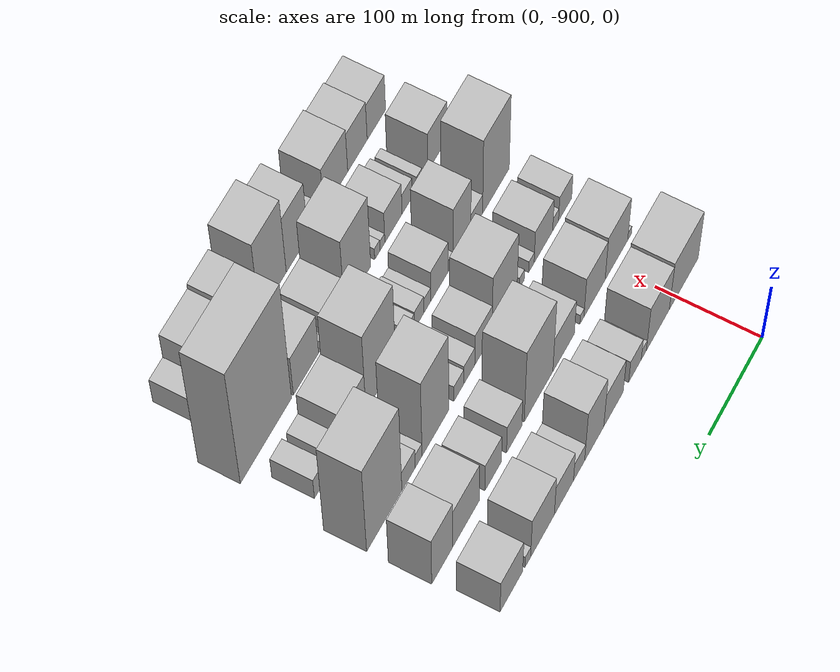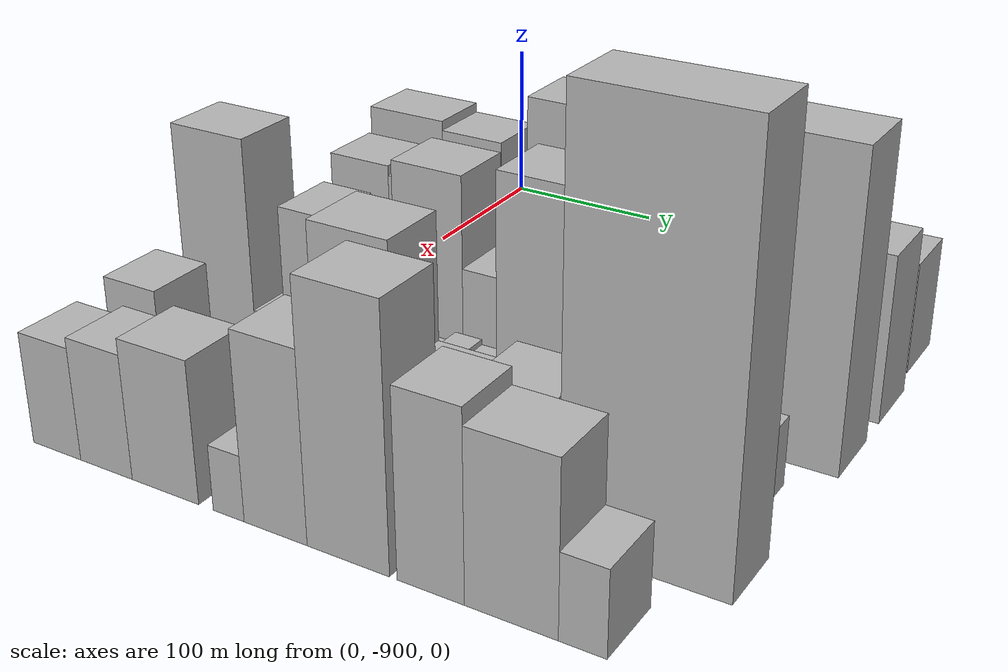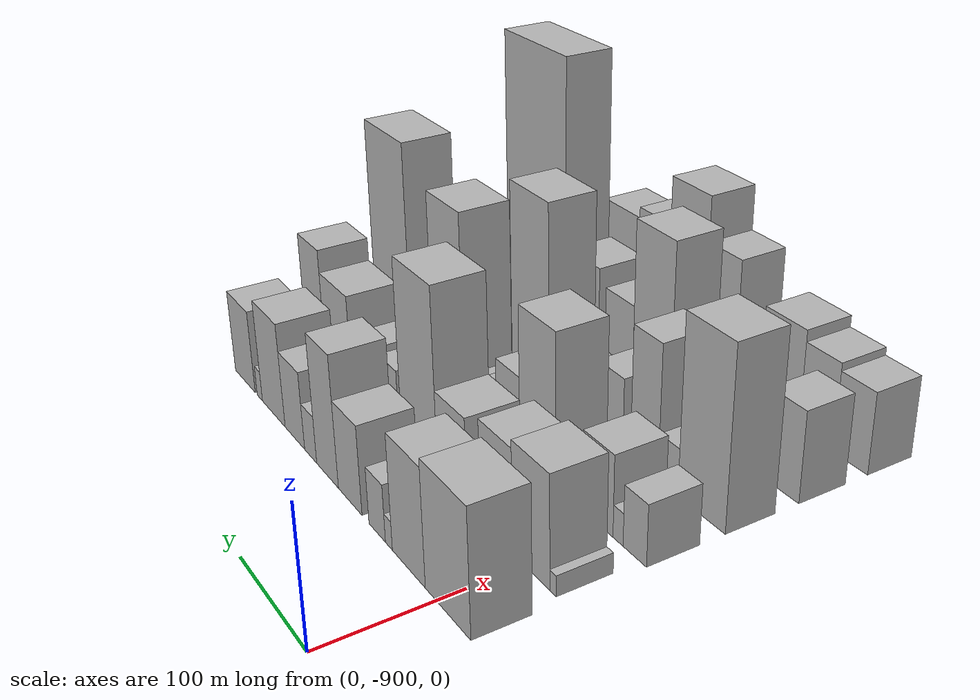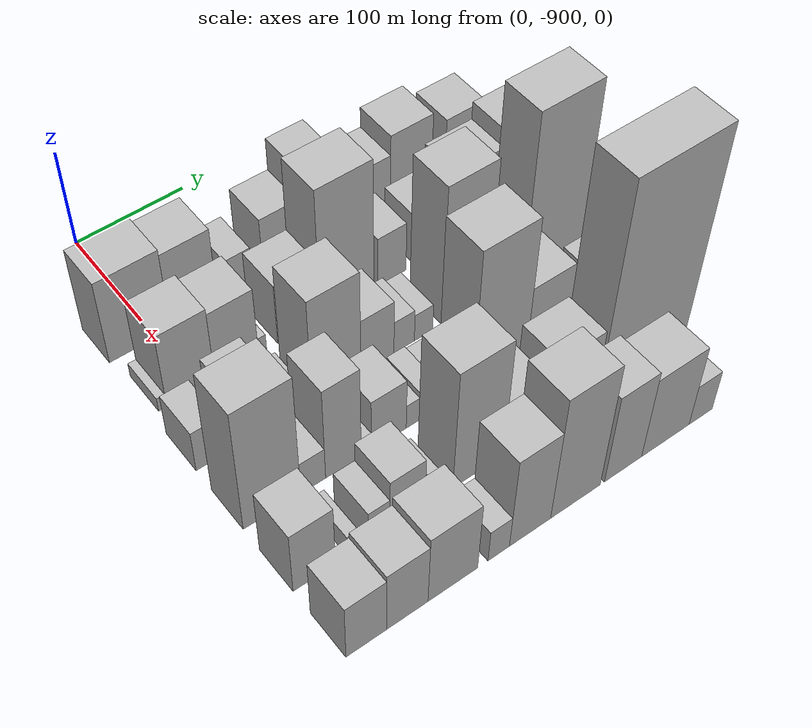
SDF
<sdf version="1.6">
 <world name="default">
  <model name="building_1">
   <static>1</static>
   <pose>100.0000 -913.0944 0 0.000000 0.000000 0.000000</pose>
   <link name="link">
    <pose>0 0 45.00 0 0 0</pose>
    <collision name="collision"><geometry><box><size>40.0000 53.8113 90.0000</size></box></geometry></collision>
    <visual name="visual">
     <cast_shadows>0</cast_shadows>
     <geometry><box><size>40.0000 53.8113 90.0000</size></box></geometry>
     <material>
      <script>
       <uri>model://HANNAS_wall/materials/scripts</uri>
       <uri>model://HANNAS_wall/materials/textures</uri>
       <name>vrc/HANNAS_wall</name>
      </script>
     </material>
    </visual>
   </link>
  </model>
  <model name="building_2">
   <static>1</static>
   <pose>100.0000 -864.8696 0 0.000000 0.000000 0.000000</pose>
   <link name="link">
    <pose>0 0 42.00 0 0 0</pose>
    <collision name="collision"><geometry><box><size>40.0000 42.6382 84.0000</size></box></geometry></collision>
    <visual name="visual">
     <cast_shadows>0</cast_shadows>
     <geometry><box><size>40.0000 42.6382 84.0000</size></box></geometry>
     <material>
      <script>
       <uri>model://HANNAS_wall/materials/scripts</uri>
       <uri>model://HANNAS_wall/materials/textures</uri>
       <name>vrc/HANNAS_wall</name>
      </script>
     </material>
    </visual>
   </link>
  </model>
  <model name="building_3">
   <static>1</static>
   <pose>100.0000 -838.8419 0 0.000000 0.000000 0.000000</pose>
   <link name="link">
    <pose>0 0 10.50 0 0 0</pose>
    <collision name="collision"><geometry><box><size>40.0000 9.4172 21.0000</size></box></geometry></collision>
    <visual name="visual">
     <cast_shadows>0</cast_shadows>
     <geometry><box><size>40.0000 9.4172 21.0000</size></box></geometry>
     <material>
      <script>
       <uri>model://HANNAS_wall/materials/scripts</uri>
       <uri>model://HANNAS_wall/materials/textures</uri>
       <name>vrc/HANNAS_wall</name>
      </script>
     </material>
    </visual>
   </link>
  </model>
  <model name="building_4">
   <static>1</static>
   <pose>100.0000 -822.6182 0 0.000000 0.000000 0.000000</pose>
   <link name="link">
    <pose>0 0 21.00 0 0 0</pose>
    <collision name="collision"><geometry><box><size>40.0000 23.0302 42.0000</size></box></geometry></collision>
    <visual name="visual">
     <cast_shadows>0</cast_shadows>
     <geometry><box><size>40.0000 23.0302 42.0000</size></box></geometry>
     <material>
      <script>
       <uri>model://HANNAS_wall/materials/scripts</uri>
       <uri>model://HANNAS_wall/materials/textures</uri>
       <name>vrc/HANNAS_wall</name>
      </script>
     </material>
    </visual>
   </link>
  </model>
  <model name="building_5">
   <static>1</static>
   <pose>100.0000 -783.4196 0 0.000000 0.000000 0.000000</pose>
   <link name="link">
    <pose>0 0 33.00 0 0 0</pose>
    <collision name="collision"><geometry><box><size>40.0000 35.3670 66.0000</size></box></geometry></collision>
    <visual name="visual">
     <cast_shadows>0</cast_shadows>
     <geometry><box><size>40.0000 35.3670 66.0000</size></box></geometry>
     <material>
      <script>
       <uri>model://HANNAS_wall/materials/scripts</uri>
       <uri>model://HANNAS_wall/materials/textures</uri>
       <name>vrc/HANNAS_wall</name>
      </script>
     </material>
    </visual>
   </link>
  </model>
  <model name="building_6">
   <static>1</static>
   <pose>100.0000 -748.5114 0 0.000000 0.000000 0.000000</pose>
   <link name="link">
    <pose>0 0 49.50 0 0 0</pose>
    <collision name="collision"><geometry><box><size>40.0000 34.4495 99.0000</size></box></geometry></collision>
    <visual name="visual">
     <cast_shadows>0</cast_shadows>
     <geometry><box><size>40.0000 34.4495 99.0000</size></box></geometry>
     <material>
      <script>
       <uri>model://HANNAS_wall/materials/scripts</uri>
       <uri>model://HANNAS_wall/materials/textures</uri>
       <name>vrc/HANNAS_wall</name>
      </script>
     </material>
    </visual>
   </link>
  </model>
  <model name="building_7">
   <static>1</static>
   <pose>100.0000 -721.2804 0 0.000000 0.000000 0.000000</pose>
   <link name="link">
    <pose>0 0 18.00 0 0 0</pose>
    <collision name="collision"><geometry><box><size>40.0000 20.0126 36.0000</size></box></geometry></collision>
    <visual name="visual">
     <cast_shadows>0</cast_shadows>
     <geometry><box><size>40.0000 20.0126 36.0000</size></box></geometry>
     <material>
      <script>
       <uri>model://HANNAS_wall/materials/scripts</uri>
       <uri>model://HANNAS_wall/materials/textures</uri>
       <name>vrc/HANNAS_wall</name>
      </script>
     </material>
    </visual>
   </link>
  </model>
  <model name="building_8">
   <static>1</static>
   <pose>100.0000 -694.3044 0 0.000000 0.000000 0.000000</pose>
   <link name="link">
    <pose>0 0 30.00 0 0 0</pose>
    <collision name="collision"><geometry><box><size>40.0000 33.9393 60.0000</size></box></geometry></collision>
    <visual name="visual">
     <cast_shadows>0</cast_shadows>
     <geometry><box><size>40.0000 33.9393 60.0000</size></box></geometry>
     <material>
      <script>
       <uri>model://HANNAS_wall/materials/scripts</uri>
       <uri>model://HANNAS_wall/materials/textures</uri>
       <name>vrc/HANNAS_wall</name>
      </script>
     </material>
    </visual>
   </link>
  </model>
  <model name="building_9">
   <static>1</static>
   <pose>100.0000 -656.4122 0 0.000000 0.000000 0.000000</pose>
   <link name="link">
    <pose>0 0 40.50 0 0 0</pose>
    <collision name="collision"><geometry><box><size>40.0000 41.8451 81.0000</size></box></geometry></collision>
    <visual name="visual">
     <cast_shadows>0</cast_shadows>
     <geometry><box><size>40.0000 41.8451 81.0000</size></box></geometry>
     <material>
      <script>
       <uri>model://HANNAS_wall/materials/scripts</uri>
       <uri>model://HANNAS_wall/materials/textures</uri>
       <name>vrc/HANNAS_wall</name>
      </script>
     </material>
    </visual>
   </link>
  </model>
  <model name="building_10">
   <static>1</static>
   <pose>100.0000 -630.5319 0 0.000000 0.000000 0.000000</pose>
   <link name="link">
    <pose>0 0 12.00 0 0 0</pose>
    <collision name="collision"><geometry><box><size>40.0000 9.9155 24.0000</size></box></geometry></collision>
    <visual name="visual">
     <cast_shadows>0</cast_shadows>
     <geometry><box><size>40.0000 9.9155 24.0000</size></box></geometry>
     <material>
      <script>
       <uri>model://HANNAS_wall/materials/scripts</uri>
       <uri>model://HANNAS_wall/materials/textures</uri>
       <name>vrc/HANNAS_wall</name>
      </script>
     </material>
    </visual>
   </link>
  </model>
  <model name="building_11">
   <static>1</static>
   <pose>100.0000 -601.9083 0 0.000000 0.000000 0.000000</pose>
   <link name="link">
    <pose>0 0 33.00 0 0 0</pose>
    <collision name="collision"><geometry><box><size>40.0000 39.3316 66.0000</size></box></geometry></collision>
    <visual name="visual">
     <cast_shadows>0</cast_shadows>
     <geometry><box><size>40.0000 39.3316 66.0000</size></box></geometry>
     <material>
      <script>
       <uri>model://HANNAS_wall/materials/scripts</uri>
       <uri>model://HANNAS_wall/materials/textures</uri>
       <name>vrc/HANNAS_wall</name>
      </script>
     </material>
    </visual>
   </link>
  </model>
  <model name="building_61">
   <static>1</static>
   <pose>160.0000 -930.5356 0 0.000000 0.000000 0.000000</pose>
   <link name="link">
    <pose>0 0 7.50 0 0 0</pose>
    <collision name="collision"><geometry><box><size>40.0000 6.9287 15.0000</size></box></geometry></collision>
    <visual name="visual">
     <cast_shadows>0</cast_shadows>
     <geometry><box><size>40.0000 6.9287 15.0000</size></box></geometry>
     <material>
      <script>
       <uri>model://HANNAS_wall/materials/scripts</uri>
       <uri>model://HANNAS_wall/materials/textures</uri>
       <name>vrc/HANNAS_wall</name>
      </script>
     </material>
    </visual>
   </link>
  </model>
  <model name="building_62">
   <static>1</static>
   <pose>160.0000 -906.1732 0 0.000000 0.000000 0.000000</pose>
   <link name="link">
    <pose>0 0 40.50 0 0 0</pose>
    <collision name="collision"><geometry><box><size>40.0000 41.7961 81.0000</size></box></geometry></collision>
    <visual name="visual">
     <cast_shadows>0</cast_shadows>
     <geometry><box><size>40.0000 41.7961 81.0000</size></box></geometry>
     <material>
      <script>
       <uri>model://HANNAS_wall/materials/scripts</uri>
       <uri>model://HANNAS_wall/materials/textures</uri>
       <name>vrc/HANNAS_wall</name>
      </script>
     </material>
    </visual>
   </link>
  </model>
  <model name="building_63">
   <static>1</static>
   <pose>160.0000 -865.8261 0 0.000000 0.000000 0.000000</pose>
   <link name="link">
    <pose>0 0 37.50 0 0 0</pose>
    <collision name="collision"><geometry><box><size>40.0000 38.8982 75.0000</size></box></geometry></collision>
    <visual name="visual">
     <cast_shadows>0</cast_shadows>
     <geometry><box><size>40.0000 38.8982 75.0000</size></box></geometry>
     <material>
      <script>
       <uri>model://HANNAS_wall/materials/scripts</uri>
       <uri>model://HANNAS_wall/materials/textures</uri>
       <name>vrc/HANNAS_wall</name>
      </script>
     </material>
    </visual>
   </link>
  </model>
  <model name="building_64">
   <static>1</static>
   <pose>160.0000 -842.7017 0 0.000000 0.000000 0.000000</pose>
   <link name="link">
    <pose>0 0 9.00 0 0 0</pose>
    <collision name="collision"><geometry><box><size>40.0000 7.3506 18.0000</size></box></geometry></collision>
    <visual name="visual">
     <cast_shadows>0</cast_shadows>
     <geometry><box><size>40.0000 7.3506 18.0000</size></box></geometry>
     <material>
      <script>
       <uri>model://HANNAS_wall/materials/scripts</uri>
       <uri>model://HANNAS_wall/materials/textures</uri>
       <name>vrc/HANNAS_wall</name>
      </script>
     </material>
    </visual>
   </link>
  </model>
  <model name="building_65">
   <static>1</static>
   <pose>160.0000 -809.5196 0 0.000000 0.000000 0.000000</pose>
   <link name="link">
    <pose>0 0 33.00 0 0 0</pose>
    <collision name="collision"><geometry><box><size>40.0000 39.0138 66.0000</size></box></geometry></collision>
    <visual name="visual">
     <cast_shadows>0</cast_shadows>
     <geometry><box><size>40.0000 39.0138 66.0000</size></box></geometry>
     <material>
      <script>
       <uri>model://HANNAS_wall/materials/scripts</uri>
       <uri>model://HANNAS_wall/materials/textures</uri>
       <name>vrc/HANNAS_wall</name>
      </script>
     </material>
    </visual>
   </link>
  </model>
  <model name="building_66">
   <static>1</static>
   <pose>160.0000 -764.3600 0 0.000000 0.000000 0.000000</pose>
   <link name="link">
    <pose>0 0 70.50 0 0 0</pose>
    <collision name="collision"><geometry><box><size>40.0000 51.3054 141.0000</size></box></geometry></collision>
    <visual name="visual">
     <cast_shadows>0</cast_shadows>
     <geometry><box><size>40.0000 51.3054 141.0000</size></box></geometry>
     <material>
      <script>
       <uri>model://HANNAS_wall/materials/scripts</uri>
       <uri>model://HANNAS_wall/materials/textures</uri>
       <name>vrc/HANNAS_wall</name>
      </script>
     </material>
    </visual>
   </link>
  </model>
  <model name="building_67">
   <static>1</static>
   <pose>160.0000 -721.0535 0 0.000000 0.000000 0.000000</pose>
   <link name="link">
    <pose>0 0 27.00 0 0 0</pose>
    <collision name="collision"><geometry><box><size>40.0000 27.3076 54.0000</size></box></geometry></collision>
    <visual name="visual">
     <cast_shadows>0</cast_shadows>
     <geometry><box><size>40.0000 27.3076 54.0000</size></box></geometry>
     <material>
      <script>
       <uri>model://HANNAS_wall/materials/scripts</uri>
       <uri>model://HANNAS_wall/materials/textures</uri>
       <name>vrc/HANNAS_wall</name>
      </script>
     </material>
    </visual>
   </link>
  </model>
  <model name="building_68">
   <static>1</static>
   <pose>160.0000 -683.9139 0 0.000000 0.000000 0.000000</pose>
   <link name="link">
    <pose>0 0 27.00 0 0 0</pose>
    <collision name="collision"><geometry><box><size>40.0000 28.9715 54.0000</size></box></geometry></collision>
    <visual name="visual">
     <cast_shadows>0</cast_shadows>
     <geometry><box><size>40.0000 28.9715 54.0000</size></box></geometry>
     <material>
      <script>
       <uri>model://HANNAS_wall/materials/scripts</uri>
       <uri>model://HANNAS_wall/materials/textures</uri>
       <name>vrc/HANNAS_wall</name>
      </script>
     </material>
    </visual>
   </link>
  </model>
  <model name="building_69">
   <static>1</static>
   <pose>160.0000 -636.4050 0 0.000000 0.000000 0.000000</pose>
   <link name="link">
    <pose>0 0 39.00 0 0 0</pose>
    <collision name="collision"><geometry><box><size>40.0000 46.0463 78.0000</size></box></geometry></collision>
    <visual name="visual">
     <cast_shadows>0</cast_shadows>
     <geometry><box><size>40.0000 46.0463 78.0000</size></box></geometry>
     <material>
      <script>
       <uri>model://HANNAS_wall/materials/scripts</uri>
       <uri>model://HANNAS_wall/materials/textures</uri>
       <name>vrc/HANNAS_wall</name>
      </script>
     </material>
    </visual>
   </link>
  </model>
  <model name="building_70">
   <static>1</static>
   <pose>160.0000 -595.4022 0 0.000000 0.000000 0.000000</pose>
   <link name="link">
    <pose>0 0 48.00 0 0 0</pose>
    <collision name="collision"><geometry><box><size>40.0000 35.9593 96.0000</size></box></geometry></collision>
    <visual name="visual">
     <cast_shadows>0</cast_shadows>
     <geometry><box><size>40.0000 35.9593 96.0000</size></box></geometry>
     <material>
      <script>
       <uri>model://HANNAS_wall/materials/scripts</uri>
       <uri>model://HANNAS_wall/materials/textures</uri>
       <name>vrc/HANNAS_wall</name>
      </script>
     </material>
    </visual>
   </link>
  </model>
  <model name="building_109">
   <static>1</static>
   <pose>220.0000 -927.9155 0 0.000000 0.000000 0.000000</pose>
   <link name="link">
    <pose>0 0 22.50 0 0 0</pose>
    <collision name="collision"><geometry><box><size>40.0000 24.1690 45.0000</size></box></geometry></collision>
    <visual name="visual">
     <cast_shadows>0</cast_shadows>
     <geometry><box><size>40.0000 24.1690 45.0000</size></box></geometry>
     <material>
      <script>
       <uri>model://HANNAS_wall/materials/scripts</uri>
       <uri>model://HANNAS_wall/materials/textures</uri>
       <name>vrc/HANNAS_wall</name>
      </script>
     </material>
    </visual>
   </link>
  </model>
  <model name="building_110">
   <static>1</static>
   <pose>220.0000 -910.4308 0 0.000000 0.000000 0.000000</pose>
   <link name="link">
    <pose>0 0 12.00 0 0 0</pose>
    <collision name="collision"><geometry><box><size>40.0000 10.8005 24.0000</size></box></geometry></collision>
    <visual name="visual">
     <cast_shadows>0</cast_shadows>
     <geometry><box><size>40.0000 10.8005 24.0000</size></box></geometry>
     <material>
      <script>
       <uri>model://HANNAS_wall/materials/scripts</uri>
       <uri>model://HANNAS_wall/materials/textures</uri>
       <name>vrc/HANNAS_wall</name>
      </script>
     </material>
    </visual>
   </link>
  </model>
  <model name="building_111">
   <static>1</static>
   <pose>220.0000 -888.1446 0 0.000000 0.000000 0.000000</pose>
   <link name="link">
    <pose>0 0 30.00 0 0 0</pose>
    <collision name="collision"><geometry><box><size>40.0000 33.7718 60.0000</size></box></geometry></collision>
    <visual name="visual">
     <cast_shadows>0</cast_shadows>
     <geometry><box><size>40.0000 33.7718 60.0000</size></box></geometry>
     <material>
      <script>
       <uri>model://HANNAS_wall/materials/scripts</uri>
       <uri>model://HANNAS_wall/materials/textures</uri>
       <name>vrc/HANNAS_wall</name>
      </script>
     </material>
    </visual>
   </link>
  </model>
  <model name="building_112">
   <static>1</static>
   <pose>220.0000 -866.2724 0 0.000000 0.000000 0.000000</pose>
   <link name="link">
    <pose>0 0 10.50 0 0 0</pose>
    <collision name="collision"><geometry><box><size>40.0000 9.9727 21.0000</size></box></geometry></collision>
    <visual name="visual">
     <cast_shadows>0</cast_shadows>
     <geometry><box><size>40.0000 9.9727 21.0000</size></box></geometry>
     <material>
      <script>
       <uri>model://HANNAS_wall/materials/scripts</uri>
       <uri>model://HANNAS_wall/materials/textures</uri>
       <name>vrc/HANNAS_wall</name>
      </script>
     </material>
    </visual>
   </link>
  </model>
  <model name="building_113">
   <static>1</static>
   <pose>220.0000 -848.6735 0 0.000000 0.000000 0.000000</pose>
   <link name="link">
    <pose>0 0 10.50 0 0 0</pose>
    <collision name="collision"><geometry><box><size>40.0000 9.2252 21.0000</size></box></geometry></collision>
    <visual name="visual">
     <cast_shadows>0</cast_shadows>
     <geometry><box><size>40.0000 9.2252 21.0000</size></box></geometry>
     <material>
      <script>
       <uri>model://HANNAS_wall/materials/scripts</uri>
       <uri>model://HANNAS_wall/materials/textures</uri>
       <name>vrc/HANNAS_wall</name>
      </script>
     </material>
    </visual>
   </link>
  </model>
  <model name="building_114">
   <static>1</static>
   <pose>220.0000 -817.6183 0 0.000000 0.000000 0.000000</pose>
   <link name="link">
    <pose>0 0 57.00 0 0 0</pose>
    <collision name="collision"><geometry><box><size>40.0000 44.8853 114.0000</size></box></geometry></collision>
    <visual name="visual">
     <cast_shadows>0</cast_shadows>
     <geometry><box><size>40.0000 44.8853 114.0000</size></box></geometry>
     <material>
      <script>
       <uri>model://HANNAS_wall/materials/scripts</uri>
       <uri>model://HANNAS_wall/materials/textures</uri>
       <name>vrc/HANNAS_wall</name>
      </script>
     </material>
    </visual>
   </link>
  </model>
  <model name="building_115">
   <static>1</static>
   <pose>220.0000 -779.9012 0 0.000000 0.000000 0.000000</pose>
   <link name="link">
    <pose>0 0 30.00 0 0 0</pose>
    <collision name="collision"><geometry><box><size>40.0000 30.5489 60.0000</size></box></geometry></collision>
    <visual name="visual">
     <cast_shadows>0</cast_shadows>
     <geometry><box><size>40.0000 30.5489 60.0000</size></box></geometry>
     <material>
      <script>
       <uri>model://HANNAS_wall/materials/scripts</uri>
       <uri>model://HANNAS_wall/materials/textures</uri>
       <name>vrc/HANNAS_wall</name>
      </script>
     </material>
    </visual>
   </link>
  </model>
  <model name="building_116">
   <static>1</static>
   <pose>220.0000 -754.9640 0 0.000000 0.000000 0.000000</pose>
   <link name="link">
    <pose>0 0 18.00 0 0 0</pose>
    <collision name="collision"><geometry><box><size>40.0000 19.3255 36.0000</size></box></geometry></collision>
    <visual name="visual">
     <cast_shadows>0</cast_shadows>
     <geometry><box><size>40.0000 19.3255 36.0000</size></box></geometry>
     <material>
      <script>
       <uri>model://HANNAS_wall/materials/scripts</uri>
       <uri>model://HANNAS_wall/materials/textures</uri>
       <name>vrc/HANNAS_wall</name>
      </script>
     </material>
    </visual>
   </link>
  </model>
  <model name="building_117">
   <static>1</static>
   <pose>220.0000 -736.5383 0 0.000000 0.000000 0.000000</pose>
   <link name="link">
    <pose>0 0 15.00 0 0 0</pose>
    <collision name="collision"><geometry><box><size>40.0000 17.5259 30.0000</size></box></geometry></collision>
    <visual name="visual">
     <cast_shadows>0</cast_shadows>
     <geometry><box><size>40.0000 17.5259 30.0000</size></box></geometry>
     <material>
      <script>
       <uri>model://HANNAS_wall/materials/scripts</uri>
       <uri>model://HANNAS_wall/materials/textures</uri>
       <name>vrc/HANNAS_wall</name>
      </script>
     </material>
    </visual>
   </link>
  </model>
  <model name="building_118">
   <static>1</static>
   <pose>220.0000 -695.5196 0 0.000000 0.000000 0.000000</pose>
   <link name="link">
    <pose>0 0 75.00 0 0 0</pose>
    <collision name="collision"><geometry><box><size>40.0000 46.5116 150.0000</size></box></geometry></collision>
    <visual name="visual">
     <cast_shadows>0</cast_shadows>
     <geometry><box><size>40.0000 46.5116 150.0000</size></box></geometry>
     <material>
      <script>
       <uri>model://HANNAS_wall/materials/scripts</uri>
       <uri>model://HANNAS_wall/materials/textures</uri>
       <name>vrc/HANNAS_wall</name>
      </script>
     </material>
    </visual>
   </link>
  </model>
  <model name="building_119">
   <static>1</static>
   <pose>220.0000 -666.2805 0 0.000000 0.000000 0.000000</pose>
   <link name="link">
    <pose>0 0 13.50 0 0 0</pose>
    <collision name="collision"><geometry><box><size>40.0000 11.9666 27.0000</size></box></geometry></collision>
    <visual name="visual">
     <cast_shadows>0</cast_shadows>
     <geometry><box><size>40.0000 11.9666 27.0000</size></box></geometry>
     <material>
      <script>
       <uri>model://HANNAS_wall/materials/scripts</uri>
       <uri>model://HANNAS_wall/materials/textures</uri>
       <name>vrc/HANNAS_wall</name>
      </script>
     </material>
    </visual>
   </link>
  </model>
  <model name="building_120">
   <static>1</static>
   <pose>220.0000 -648.8091 0 0.000000 0.000000 0.000000</pose>
   <link name="link">
    <pose>0 0 19.50 0 0 0</pose>
    <collision name="collision"><geometry><box><size>40.0000 22.9761 39.0000</size></box></geometry></collision>
    <visual name="visual">
     <cast_shadows>0</cast_shadows>
     <geometry><box><size>40.0000 22.9761 39.0000</size></box></geometry>
     <material>
      <script>
       <uri>model://HANNAS_wall/materials/scripts</uri>
       <uri>model://HANNAS_wall/materials/textures</uri>
       <name>vrc/HANNAS_wall</name>
      </script>
     </material>
    </visual>
   </link>
  </model>
  <model name="building_121">
   <static>1</static>
   <pose>220.0000 -607.2191 0 0.000000 0.000000 0.000000</pose>
   <link name="link">
    <pose>0 0 87.00 0 0 0</pose>
    <collision name="collision"><geometry><box><size>40.0000 60.2039 174.0000</size></box></geometry></collision>
    <visual name="visual">
     <cast_shadows>0</cast_shadows>
     <geometry><box><size>40.0000 60.2039 174.0000</size></box></geometry>
     <material>
      <script>
       <uri>model://HANNAS_wall/materials/scripts</uri>
       <uri>model://HANNAS_wall/materials/textures</uri>
       <name>vrc/HANNAS_wall</name>
      </script>
     </material>
    </visual>
   </link>
  </model>
  <model name="building_169">
   <static>1</static>
   <pose>280.0000 -915.8749 0 0.000000 0.000000 0.000000</pose>
   <link name="link">
    <pose>0 0 67.50 0 0 0</pose>
    <collision name="collision"><geometry><box><size>40.0000 48.2502 135.0000</size></box></geometry></collision>
    <visual name="visual">
     <cast_shadows>0</cast_shadows>
     <geometry><box><size>40.0000 48.2502 135.0000</size></box></geometry>
     <material>
      <script>
       <uri>model://HANNAS_wall/materials/scripts</uri>
       <uri>model://HANNAS_wall/materials/textures</uri>
       <name>vrc/HANNAS_wall</name>
      </script>
     </material>
    </visual>
   </link>
  </model>
  <model name="building_170">
   <static>1</static>
   <pose>280.0000 -881.0694 0 0.000000 0.000000 0.000000</pose>
   <link name="link">
    <pose>0 0 18.00 0 0 0</pose>
    <collision name="collision"><geometry><box><size>40.0000 21.3608 36.0000</size></box></geometry></collision>
    <visual name="visual">
     <cast_shadows>0</cast_shadows>
     <geometry><box><size>40.0000 21.3608 36.0000</size></box></geometry>
     <material>
      <script>
       <uri>model://HANNAS_wall/materials/scripts</uri>
       <uri>model://HANNAS_wall/materials/textures</uri>
       <name>vrc/HANNAS_wall</name>
      </script>
     </material>
    </visual>
   </link>
  </model>
  <model name="building_171">
   <static>1</static>
   <pose>280.0000 -854.8173 0 0.000000 0.000000 0.000000</pose>
   <link name="link">
    <pose>0 0 51.00 0 0 0</pose>
    <collision name="collision"><geometry><box><size>40.0000 31.1434 102.0000</size></box></geometry></collision>
    <visual name="visual">
     <cast_shadows>0</cast_shadows>
     <geometry><box><size>40.0000 31.1434 102.0000</size></box></geometry>
     <material>
      <script>
       <uri>model://HANNAS_wall/materials/scripts</uri>
       <uri>model://HANNAS_wall/materials/textures</uri>
       <name>vrc/HANNAS_wall</name>
      </script>
     </material>
    </visual>
   </link>
  </model>
  <model name="building_172">
   <static>1</static>
   <pose>280.0000 -834.7707 0 0.000000 0.000000 0.000000</pose>
   <link name="link">
    <pose>0 0 10.50 0 0 0</pose>
    <collision name="collision"><geometry><box><size>40.0000 8.9498 21.0000</size></box></geometry></collision>
    <visual name="visual">
     <cast_shadows>0</cast_shadows>
     <geometry><box><size>40.0000 8.9498 21.0000</size></box></geometry>
     <material>
      <script>
       <uri>model://HANNAS_wall/materials/scripts</uri>
       <uri>model://HANNAS_wall/materials/textures</uri>
       <name>vrc/HANNAS_wall</name>
      </script>
     </material>
    </visual>
   </link>
  </model>
  <model name="building_173">
   <static>1</static>
   <pose>280.0000 -814.6395 0 0.000000 0.000000 0.000000</pose>
   <link name="link">
    <pose>0 0 28.50 0 0 0</pose>
    <collision name="collision"><geometry><box><size>40.0000 31.3126 57.0000</size></box></geometry></collision>
    <visual name="visual">
     <cast_shadows>0</cast_shadows>
     <geometry><box><size>40.0000 31.3126 57.0000</size></box></geometry>
     <material>
      <script>
       <uri>model://HANNAS_wall/materials/scripts</uri>
       <uri>model://HANNAS_wall/materials/textures</uri>
       <name>vrc/HANNAS_wall</name>
      </script>
     </material>
    </visual>
   </link>
  </model>
  <model name="building_174">
   <static>1</static>
   <pose>280.0000 -792.9225 0 0.000000 0.000000 0.000000</pose>
   <link name="link">
    <pose>0 0 13.50 0 0 0</pose>
    <collision name="collision"><geometry><box><size>40.0000 12.1213 27.0000</size></box></geometry></collision>
    <visual name="visual">
     <cast_shadows>0</cast_shadows>
     <geometry><box><size>40.0000 12.1213 27.0000</size></box></geometry>
     <material>
      <script>
       <uri>model://HANNAS_wall/materials/scripts</uri>
       <uri>model://HANNAS_wall/materials/textures</uri>
       <name>vrc/HANNAS_wall</name>
      </script>
     </material>
    </visual>
   </link>
  </model>
  <model name="building_175">
   <static>1</static>
   <pose>280.0000 -778.5787 0 0.000000 0.000000 0.000000</pose>
   <link name="link">
    <pose>0 0 16.50 0 0 0</pose>
    <collision name="collision"><geometry><box><size>40.0000 16.5662 33.0000</size></box></geometry></collision>
    <visual name="visual">
     <cast_shadows>0</cast_shadows>
     <geometry><box><size>40.0000 16.5662 33.0000</size></box></geometry>
     <material>
      <script>
       <uri>model://HANNAS_wall/materials/scripts</uri>
       <uri>model://HANNAS_wall/materials/textures</uri>
       <name>vrc/HANNAS_wall</name>
      </script>
     </material>
    </visual>
   </link>
  </model>
  <model name="building_176">
   <static>1</static>
   <pose>280.0000 -762.4127 0 0.000000 0.000000 0.000000</pose>
   <link name="link">
    <pose>0 0 15.00 0 0 0</pose>
    <collision name="collision"><geometry><box><size>40.0000 15.7658 30.0000</size></box></geometry></collision>
    <visual name="visual">
     <cast_shadows>0</cast_shadows>
     <geometry><box><size>40.0000 15.7658 30.0000</size></box></geometry>
     <material>
      <script>
       <uri>model://HANNAS_wall/materials/scripts</uri>
       <uri>model://HANNAS_wall/materials/textures</uri>
       <name>vrc/HANNAS_wall</name>
      </script>
     </material>
    </visual>
   </link>
  </model>
  <model name="building_177">
   <static>1</static>
   <pose>280.0000 -748.2417 0 0.000000 0.000000 0.000000</pose>
   <link name="link">
    <pose>0 0 7.50 0 0 0</pose>
    <collision name="collision"><geometry><box><size>40.0000 6.5762 15.0000</size></box></geometry></collision>
    <visual name="visual">
     <cast_shadows>0</cast_shadows>
     <geometry><box><size>40.0000 6.5762 15.0000</size></box></geometry>
     <material>
      <script>
       <uri>model://HANNAS_wall/materials/scripts</uri>
       <uri>model://HANNAS_wall/materials/textures</uri>
       <name>vrc/HANNAS_wall</name>
      </script>
     </material>
    </visual>
   </link>
  </model>
  <model name="building_178">
   <static>1</static>
   <pose>280.0000 -711.2621 0 0.000000 0.000000 0.000000</pose>
   <link name="link">
    <pose>0 0 75.00 0 0 0</pose>
    <collision name="collision"><geometry><box><size>40.0000 51.3831 150.0000</size></box></geometry></collision>
    <visual name="visual">
     <cast_shadows>0</cast_shadows>
     <geometry><box><size>40.0000 51.3831 150.0000</size></box></geometry>
     <material>
      <script>
       <uri>model://HANNAS_wall/materials/scripts</uri>
       <uri>model://HANNAS_wall/materials/textures</uri>
       <name>vrc/HANNAS_wall</name>
      </script>
     </material>
    </visual>
   </link>
  </model>
  <model name="building_179">
   <static>1</static>
   <pose>280.0000 -665.1483 0 0.000000 0.000000 0.000000</pose>
   <link name="link">
    <pose>0 0 37.50 0 0 0</pose>
    <collision name="collision"><geometry><box><size>40.0000 40.8444 75.0000</size></box></geometry></collision>
    <visual name="visual">
     <cast_shadows>0</cast_shadows>
     <geometry><box><size>40.0000 40.8444 75.0000</size></box></geometry>
     <material>
      <script>
       <uri>model://HANNAS_wall/materials/scripts</uri>
       <uri>model://HANNAS_wall/materials/textures</uri>
       <name>vrc/HANNAS_wall</name>
      </script>
     </material>
    </visual>
   </link>
  </model>
  <model name="building_180">
   <static>1</static>
   <pose>280.0000 -635.0090 0 0.000000 0.000000 0.000000</pose>
   <link name="link">
    <pose>0 0 18.00 0 0 0</pose>
    <collision name="collision"><geometry><box><size>40.0000 19.4342 36.0000</size></box></geometry></collision>
    <visual name="visual">
     <cast_shadows>0</cast_shadows>
     <geometry><box><size>40.0000 19.4342 36.0000</size></box></geometry>
     <material>
      <script>
       <uri>model://HANNAS_wall/materials/scripts</uri>
       <uri>model://HANNAS_wall/materials/textures</uri>
       <name>vrc/HANNAS_wall</name>
      </script>
     </material>
    </visual>
   </link>
  </model>
  <model name="building_181">
   <static>1</static>
   <pose>280.0000 -608.0134 0 0.000000 0.000000 0.000000</pose>
   <link name="link">
    <pose>0 0 19.50 0 0 0</pose>
    <collision name="collision"><geometry><box><size>40.0000 20.5569 39.0000</size></box></geometry></collision>
    <visual name="visual">
     <cast_shadows>0</cast_shadows>
     <geometry><box><size>40.0000 20.5569 39.0000</size></box></geometry>
     <material>
      <script>
       <uri>model://HANNAS_wall/materials/scripts</uri>
       <uri>model://HANNAS_wall/materials/textures</uri>
       <name>vrc/HANNAS_wall</name>
      </script>
     </material>
    </visual>
   </link>
  </model>
  <model name="building_226">
   <static>1</static>
   <pose>340.0000 -922.5686 0 0.000000 0.000000 0.000000</pose>
   <link name="link">
    <pose>0 0 34.50 0 0 0</pose>
    <collision name="collision"><geometry><box><size>40.0000 34.8629 69.0000</size></box></geometry></collision>
    <visual name="visual">
     <cast_shadows>0</cast_shadows>
     <geometry><box><size>40.0000 34.8629 69.0000</size></box></geometry>
     <material>
      <script>
       <uri>model://HANNAS_wall/materials/scripts</uri>
       <uri>model://HANNAS_wall/materials/textures</uri>
       <name>vrc/HANNAS_wall</name>
      </script>
     </material>
    </visual>
   </link>
  </model>
  <model name="building_227">
   <static>1</static>
   <pose>340.0000 -890.2171 0 0.000000 0.000000 0.000000</pose>
   <link name="link">
    <pose>0 0 12.00 0 0 0</pose>
    <collision name="collision"><geometry><box><size>40.0000 9.8400 24.0000</size></box></geometry></collision>
    <visual name="visual">
     <cast_shadows>0</cast_shadows>
     <geometry><box><size>40.0000 9.8400 24.0000</size></box></geometry>
     <material>
      <script>
       <uri>model://HANNAS_wall/materials/scripts</uri>
       <uri>model://HANNAS_wall/materials/textures</uri>
       <name>vrc/HANNAS_wall</name>
      </script>
     </material>
    </visual>
   </link>
  </model>
  <model name="building_228">
   <static>1</static>
   <pose>340.0000 -868.1741 0 0.000000 0.000000 0.000000</pose>
   <link name="link">
    <pose>0 0 18.00 0 0 0</pose>
    <collision name="collision"><geometry><box><size>40.0000 18.2460 36.0000</size></box></geometry></collision>
    <visual name="visual">
     <cast_shadows>0</cast_shadows>
     <geometry><box><size>40.0000 18.2460 36.0000</size></box></geometry>
     <material>
      <script>
       <uri>model://HANNAS_wall/materials/scripts</uri>
       <uri>model://HANNAS_wall/materials/textures</uri>
       <name>vrc/HANNAS_wall</name>
      </script>
     </material>
    </visual>
   </link>
  </model>
  <model name="building_229">
   <static>1</static>
   <pose>340.0000 -843.8335 0 0.000000 0.000000 0.000000</pose>
   <link name="link">
    <pose>0 0 28.50 0 0 0</pose>
    <collision name="collision"><geometry><box><size>40.0000 30.4353 57.0000</size></box></geometry></collision>
    <visual name="visual">
     <cast_shadows>0</cast_shadows>
     <geometry><box><size>40.0000 30.4353 57.0000</size></box></geometry>
     <material>
      <script>
       <uri>model://HANNAS_wall/materials/scripts</uri>
       <uri>model://HANNAS_wall/materials/textures</uri>
       <name>vrc/HANNAS_wall</name>
      </script>
     </material>
    </visual>
   </link>
  </model>
  <model name="building_230">
   <static>1</static>
   <pose>340.0000 -824.3652 0 0.000000 0.000000 0.000000</pose>
   <link name="link">
    <pose>0 0 9.00 0 0 0</pose>
    <collision name="collision"><geometry><box><size>40.0000 8.5012 18.0000</size></box></geometry></collision>
    <visual name="visual">
     <cast_shadows>0</cast_shadows>
     <geometry><box><size>40.0000 8.5012 18.0000</size></box></geometry>
     <material>
      <script>
       <uri>model://HANNAS_wall/materials/scripts</uri>
       <uri>model://HANNAS_wall/materials/textures</uri>
       <name>vrc/HANNAS_wall</name>
      </script>
     </material>
    </visual>
   </link>
  </model>
  <model name="building_231">
   <static>1</static>
   <pose>340.0000 -815.4228 0 0.000000 0.000000 0.000000</pose>
   <link name="link">
    <pose>0 0 10.50 0 0 0</pose>
    <collision name="collision"><geometry><box><size>40.0000 9.3835 21.0000</size></box></geometry></collision>
    <visual name="visual">
     <cast_shadows>0</cast_shadows>
     <geometry><box><size>40.0000 9.3835 21.0000</size></box></geometry>
     <material>
      <script>
       <uri>model://HANNAS_wall/materials/scripts</uri>
       <uri>model://HANNAS_wall/materials/textures</uri>
       <name>vrc/HANNAS_wall</name>
      </script>
     </material>
    </visual>
   </link>
  </model>
  <model name="building_232">
   <static>1</static>
   <pose>340.0000 -780.7042 0 0.000000 0.000000 0.000000</pose>
   <link name="link">
    <pose>0 0 66.00 0 0 0</pose>
    <collision name="collision"><geometry><box><size>40.0000 46.0537 132.0000</size></box></geometry></collision>
    <visual name="visual">
     <cast_shadows>0</cast_shadows>
     <geometry><box><size>40.0000 46.0537 132.0000</size></box></geometry>
     <material>
      <script>
       <uri>model://HANNAS_wall/materials/scripts</uri>
       <uri>model://HANNAS_wall/materials/textures</uri>
       <name>vrc/HANNAS_wall</name>
      </script>
     </material>
    </visual>
   </link>
  </model>
  <model name="building_233">
   <static>1</static>
   <pose>340.0000 -739.6809 0 0.000000 0.000000 0.000000</pose>
   <link name="link">
    <pose>0 0 31.50 0 0 0</pose>
    <collision name="collision"><geometry><box><size>40.0000 35.9929 63.0000</size></box></geometry></collision>
    <visual name="visual">
     <cast_shadows>0</cast_shadows>
     <geometry><box><size>40.0000 35.9929 63.0000</size></box></geometry>
     <material>
      <script>
       <uri>model://HANNAS_wall/materials/scripts</uri>
       <uri>model://HANNAS_wall/materials/textures</uri>
       <name>vrc/HANNAS_wall</name>
      </script>
     </material>
    </visual>
   </link>
  </model>
  <model name="building_234">
   <static>1</static>
   <pose>340.0000 -717.3924 0 0.000000 0.000000 0.000000</pose>
   <link name="link">
    <pose>0 0 10.50 0 0 0</pose>
    <collision name="collision"><geometry><box><size>40.0000 8.5840 21.0000</size></box></geometry></collision>
    <visual name="visual">
     <cast_shadows>0</cast_shadows>
     <geometry><box><size>40.0000 8.5840 21.0000</size></box></geometry>
     <material>
      <script>
       <uri>model://HANNAS_wall/materials/scripts</uri>
       <uri>model://HANNAS_wall/materials/textures</uri>
       <name>vrc/HANNAS_wall</name>
      </script>
     </material>
    </visual>
   </link>
  </model>
  <model name="building_235">
   <static>1</static>
   <pose>340.0000 -691.5098 0 0.000000 0.000000 0.000000</pose>
   <link name="link">
    <pose>0 0 37.50 0 0 0</pose>
    <collision name="collision"><geometry><box><size>40.0000 43.1811 75.0000</size></box></geometry></collision>
    <visual name="visual">
     <cast_shadows>0</cast_shadows>
     <geometry><box><size>40.0000 43.1811 75.0000</size></box></geometry>
     <material>
      <script>
       <uri>model://HANNAS_wall/materials/scripts</uri>
       <uri>model://HANNAS_wall/materials/textures</uri>
       <name>vrc/HANNAS_wall</name>
      </script>
     </material>
    </visual>
   </link>
  </model>
  <model name="building_236">
   <static>1</static>
   <pose>340.0000 -623.7494 0 0.000000 0.000000 0.000000</pose>
   <link name="link">
    <pose>0 0 112.50 0 0 0</pose>
    <collision name="collision"><geometry><box><size>40.0000 86.3397 225.0000</size></box></geometry></collision>
    <visual name="visual">
     <cast_shadows>0</cast_shadows>
     <geometry><box><size>40.0000 86.3397 225.0000</size></box></geometry>
     <material>
      <script>
       <uri>model://HANNAS_wall/materials/scripts</uri>
       <uri>model://HANNAS_wall/materials/textures</uri>
       <name>vrc/HANNAS_wall</name>
      </script>
     </material>
    </visual>
   </link>
  </model>
  <model name="building_286">
   <static>1</static>
   <pose>400.0000 -923.5723 0 0.000000 0.000000 0.000000</pose>
   <link name="link">
    <pose>0 0 31.50 0 0 0</pose>
    <collision name="collision"><geometry><box><size>40.0000 32.8555 63.0000</size></box></geometry></collision>
    <visual name="visual">
     <cast_shadows>0</cast_shadows>
     <geometry><box><size>40.0000 32.8555 63.0000</size></box></geometry>
     <material>
      <script>
       <uri>model://HANNAS_wall/materials/scripts</uri>
       <uri>model://HANNAS_wall/materials/textures</uri>
       <name>vrc/HANNAS_wall</name>
      </script>
     </material>
    </visual>
   </link>
  </model>
  <model name="building_287">
   <static>1</static>
   <pose>400.0000 -889.8858 0 0.000000 0.000000 0.000000</pose>
   <link name="link">
    <pose>0 0 34.50 0 0 0</pose>
    <collision name="collision"><geometry><box><size>40.0000 34.5174 69.0000</size></box></geometry></collision>
    <visual name="visual">
     <cast_shadows>0</cast_shadows>
     <geometry><box><size>40.0000 34.5174 69.0000</size></box></geometry>
     <material>
      <script>
       <uri>model://HANNAS_wall/materials/scripts</uri>
       <uri>model://HANNAS_wall/materials/textures</uri>
       <name>vrc/HANNAS_wall</name>
      </script>
     </material>
    </visual>
   </link>
  </model>
  <model name="building_288">
   <static>1</static>
   <pose>400.0000 -851.3845 0 0.000000 0.000000 0.000000</pose>
   <link name="link">
    <pose>0 0 39.00 0 0 0</pose>
    <collision name="collision"><geometry><box><size>40.0000 42.4851 78.0000</size></box></geometry></collision>
    <visual name="visual">
     <cast_shadows>0</cast_shadows>
     <geometry><box><size>40.0000 42.4851 78.0000</size></box></geometry>
     <material>
      <script>
       <uri>model://HANNAS_wall/materials/scripts</uri>
       <uri>model://HANNAS_wall/materials/textures</uri>
       <name>vrc/HANNAS_wall</name>
      </script>
     </material>
    </visual>
   </link>
  </model>
  <model name="building_289">
   <static>1</static>
   <pose>400.0000 -811.7156 0 0.000000 0.000000 0.000000</pose>
   <link name="link">
    <pose>0 0 18.00 0 0 0</pose>
    <collision name="collision"><geometry><box><size>40.0000 18.8527 36.0000</size></box></geometry></collision>
    <visual name="visual">
     <cast_shadows>0</cast_shadows>
     <geometry><box><size>40.0000 18.8527 36.0000</size></box></geometry>
     <material>
      <script>
       <uri>model://HANNAS_wall/materials/scripts</uri>
       <uri>model://HANNAS_wall/materials/textures</uri>
       <name>vrc/HANNAS_wall</name>
      </script>
     </material>
    </visual>
   </link>
  </model>
  <model name="building_290">
   <static>1</static>
   <pose>400.0000 -783.7796 0 0.000000 0.000000 0.000000</pose>
   <link name="link">
    <pose>0 0 51.00 0 0 0</pose>
    <collision name="collision"><geometry><box><size>40.0000 37.0194 102.0000</size></box></geometry></collision>
    <visual name="visual">
     <cast_shadows>0</cast_shadows>
     <geometry><box><size>40.0000 37.0194 102.0000</size></box></geometry>
     <material>
      <script>
       <uri>model://HANNAS_wall/materials/scripts</uri>
       <uri>model://HANNAS_wall/materials/textures</uri>
       <name>vrc/HANNAS_wall</name>
      </script>
     </material>
    </visual>
   </link>
  </model>
  <model name="building_291">
   <static>1</static>
   <pose>400.0000 -742.3108 0 0.000000 0.000000 0.000000</pose>
   <link name="link">
    <pose>0 0 69.00 0 0 0</pose>
    <collision name="collision"><geometry><box><size>40.0000 45.9181 138.0000</size></box></geometry></collision>
    <visual name="visual">
     <cast_shadows>0</cast_shadows>
     <geometry><box><size>40.0000 45.9181 138.0000</size></box></geometry>
     <material>
      <script>
       <uri>model://HANNAS_wall/materials/scripts</uri>
       <uri>model://HANNAS_wall/materials/textures</uri>
       <name>vrc/HANNAS_wall</name>
      </script>
     </material>
    </visual>
   </link>
  </model>
  <model name="building_292">
   <static>1</static>
   <pose>400.0000 -697.6335 0 0.000000 0.000000 0.000000</pose>
   <link name="link">
    <pose>0 0 49.50 0 0 0</pose>
    <collision name="collision"><geometry><box><size>40.0000 35.4365 99.0000</size></box></geometry></collision>
    <visual name="visual">
     <cast_shadows>0</cast_shadows>
     <geometry><box><size>40.0000 35.4365 99.0000</size></box></geometry>
     <material>
      <script>
       <uri>model://HANNAS_wall/materials/scripts</uri>
       <uri>model://HANNAS_wall/materials/textures</uri>
       <name>vrc/HANNAS_wall</name>
      </script>
     </material>
    </visual>
   </link>
  </model>
  <model name="building_293">
   <static>1</static>
   <pose>400.0000 -656.6145 0 0.000000 0.000000 0.000000</pose>
   <link name="link">
    <pose>0 0 45.00 0 0 0</pose>
    <collision name="collision"><geometry><box><size>40.0000 46.6015 90.0000</size></box></geometry></collision>
    <visual name="visual">
     <cast_shadows>0</cast_shadows>
     <geometry><box><size>40.0000 46.6015 90.0000</size></box></geometry>
     <material>
      <script>
       <uri>model://HANNAS_wall/materials/scripts</uri>
       <uri>model://HANNAS_wall/materials/textures</uri>
       <name>vrc/HANNAS_wall</name>
      </script>
     </material>
    </visual>
   </link>
  </model>
  <model name="building_294">
   <static>1</static>
   <pose>400.0000 -621.7249 0 0.000000 0.000000 0.000000</pose>
   <link name="link">
    <pose>0 0 22.50 0 0 0</pose>
    <collision name="collision"><geometry><box><size>40.0000 23.1777 45.0000</size></box></geometry></collision>
    <visual name="visual">
     <cast_shadows>0</cast_shadows>
     <geometry><box><size>40.0000 23.1777 45.0000</size></box></geometry>
     <material>
      <script>
       <uri>model://HANNAS_wall/materials/scripts</uri>
       <uri>model://HANNAS_wall/materials/textures</uri>
       <name>vrc/HANNAS_wall</name>
      </script>
     </material>
    </visual>
   </link>
  </model>
 </world>
</sdf>
